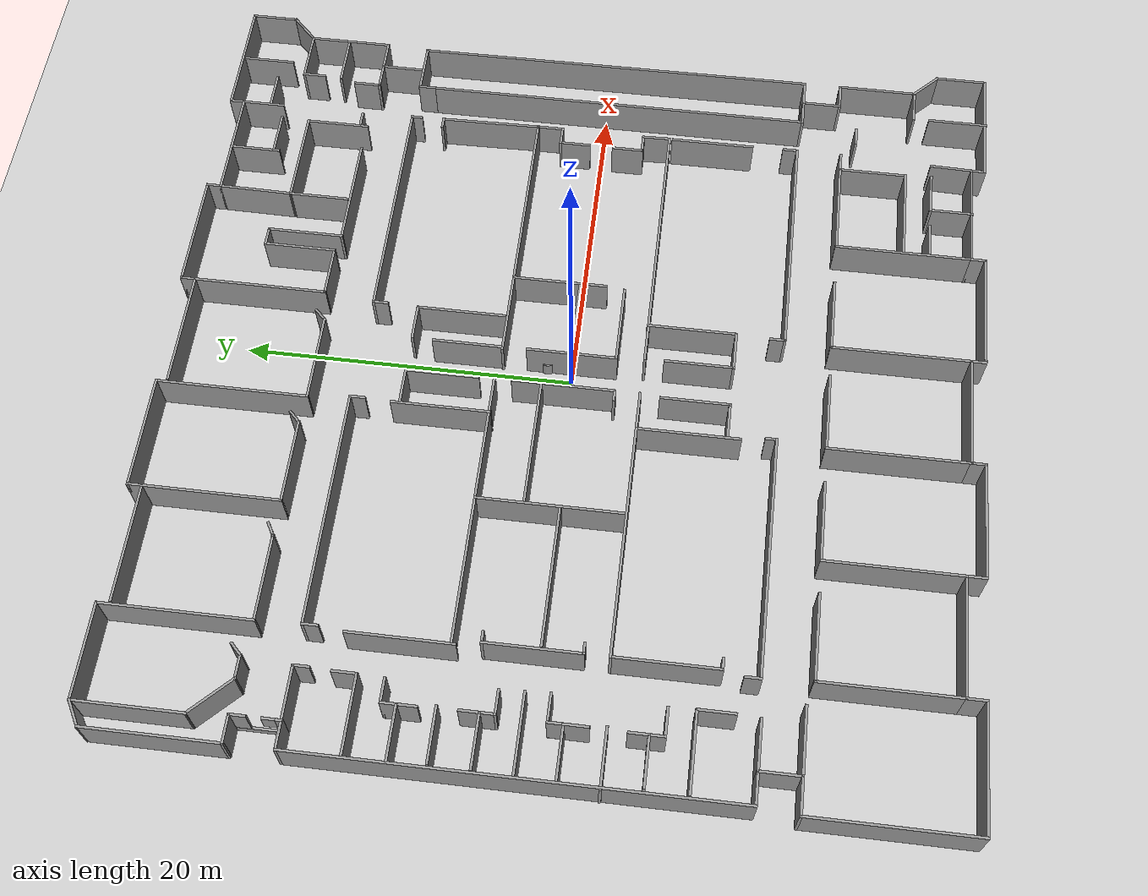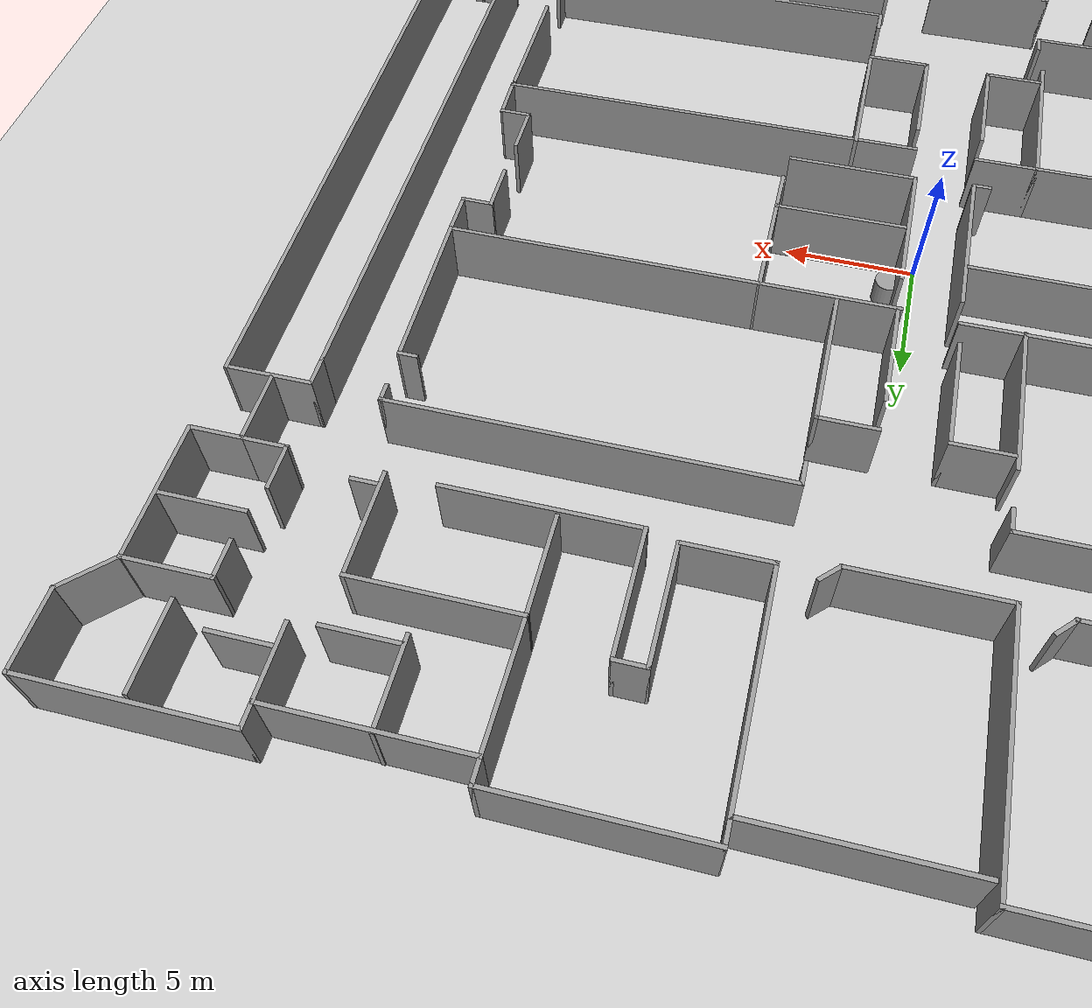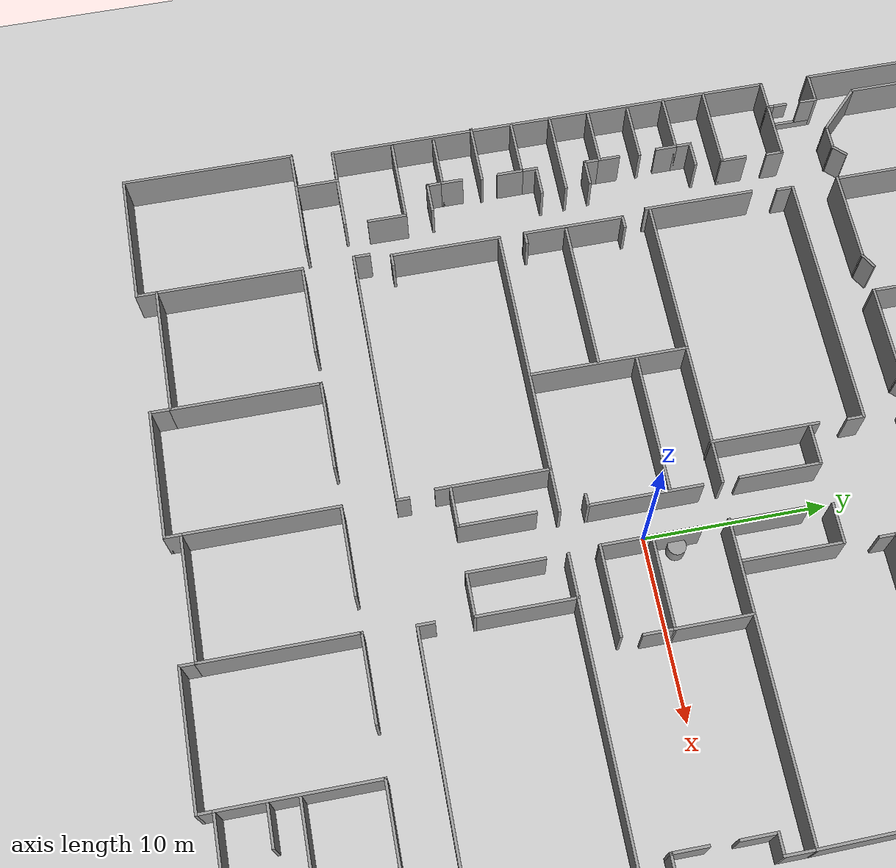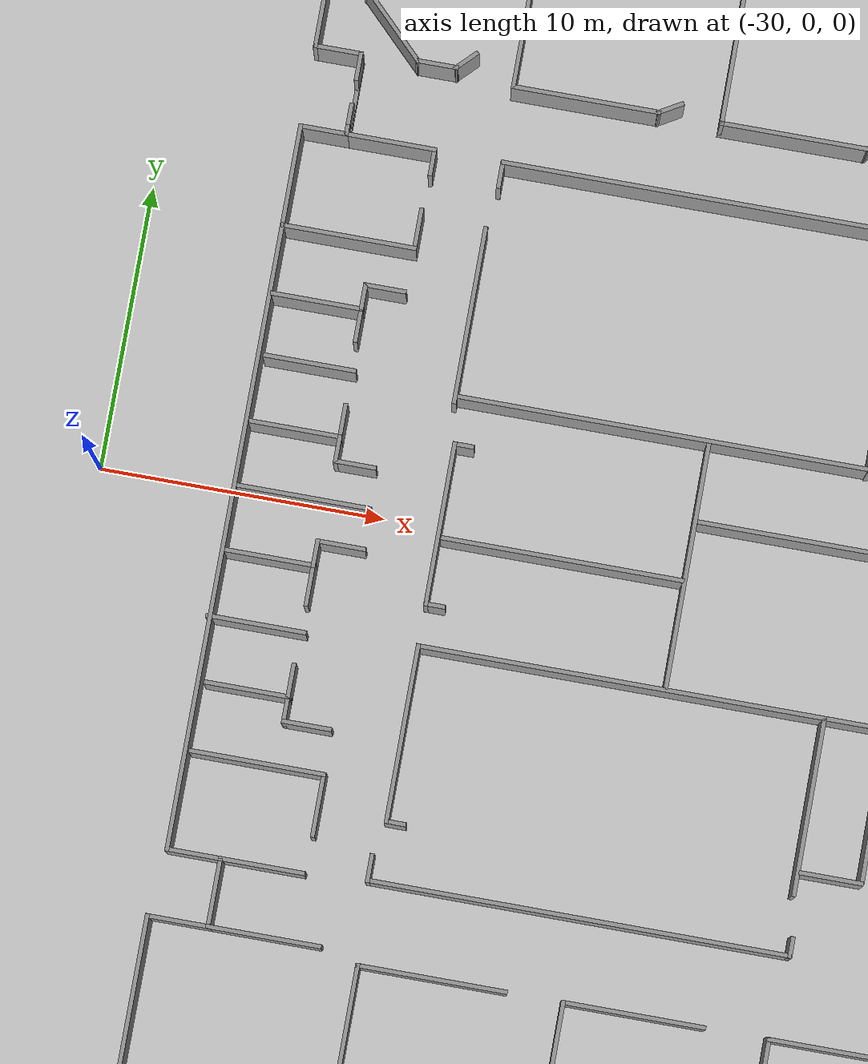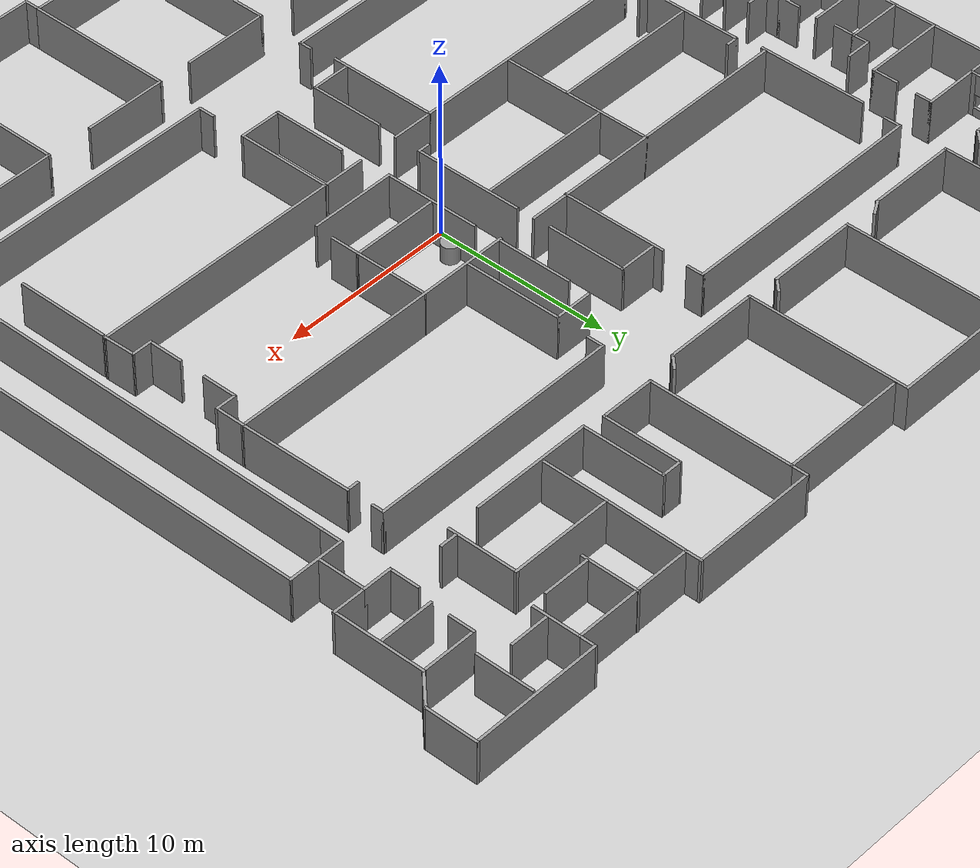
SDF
<sdf version='1.4'>
  <world name='default'>
    <!-- A global light source -->
    <include>
      <uri>model://sun</uri>
    </include>

    <!-- A ground plane -->
    <include>
      <uri>model://ground_plane</uri>
    </include>

    <physics type="ode">
      <real_time_update_rate>1000.0</real_time_update_rate>
      <max_step_size>0.001</max_step_size>
      <real_time_factor>1</real_time_factor>
      <ode>
        <solver>
          <type>quick</type>
          <iters>150</iters>
          <precon_iters>0</precon_iters>
          <sor>1.400000</sor>
          <use_dynamic_moi_rescaling>1</use_dynamic_moi_rescaling>
        </solver>
        <constraints>
          <cfm>0.00001</cfm>
          <erp>0.2</erp>
          <contact_max_correcting_vel>2000.000000</contact_max_correcting_vel>
          <contact_surface_layer>0.01000</contact_surface_layer>
        </constraints>
      </ode>
    </physics>

    <!-- Load world -->
    <include>
      <uri>model://KGCOE_MODEL</uri>
    </include>

    <model name='unit_cylinder'>
      <pose frame=''>0.990344 1.50775 0.5 0 -0 0</pose>
      <link name='link'>
        <inertial>
          <mass>1</mass>
          <inertia>
            <ixx>0.145833</ixx>
            <ixy>0</ixy>
            <ixz>0</ixz>
            <iyy>0.145833</iyy>
            <iyz>0</iyz>
            <izz>0.125</izz>
          </inertia>
        </inertial>
        <collision name='collision'>
          <geometry>
            <cylinder>
              <radius>0.5</radius>
              <length>1</length>
            </cylinder>
          </geometry>
          <max_contacts>10</max_contacts>
          <surface>
            <contact>
              <ode/>
            </contact>
            <bounce/>
            <friction>
              <torsional>
                <ode/>
              </torsional>
              <ode/>
            </friction>
          </surface>
        </collision>
        <visual name='visual'>
          <geometry>
            <cylinder>
              <radius>0.5</radius>
              <length>1</length>
            </cylinder>
          </geometry>
          <material>
            <script>
              <name>Gazebo/Grey</name>
              <uri>file://media/materials/scripts/gazebo.material</uri>
            </script>
          </material>
        </visual>
        <self_collide>0</self_collide>
        <enable_wind>0</enable_wind>
        <kinematic>0</kinematic>
      </link>
    </model>

    <scene>
      <ambient>0.4 0.4 0.4 1</ambient>
      <background>0.7 0.7 0.7 1</background>
      <shadows>true</shadows>
    </scene>

    <gui fullscreen='0'>
      <camera name='user_camera'>
        <pose>0.8 0.0 12.0 0 1.5708 0</pose>
        <view_controller>orbit</view_controller>
      </camera>
    </gui>
  </world>
</sdf>
